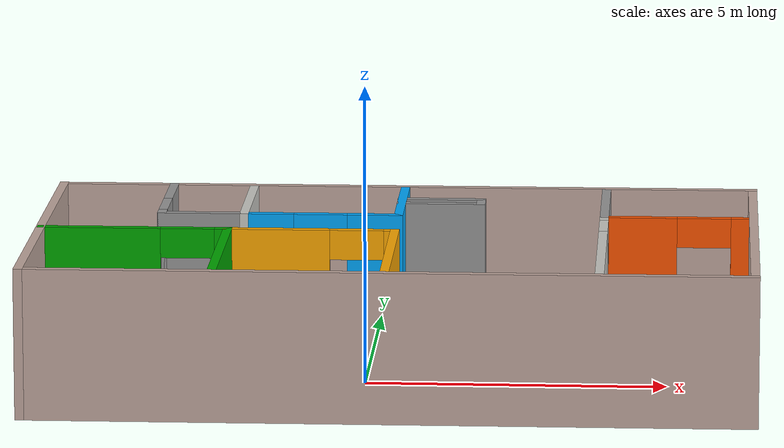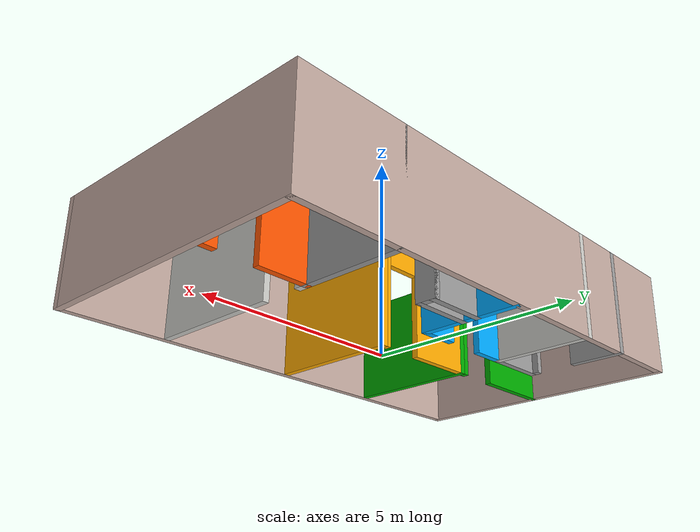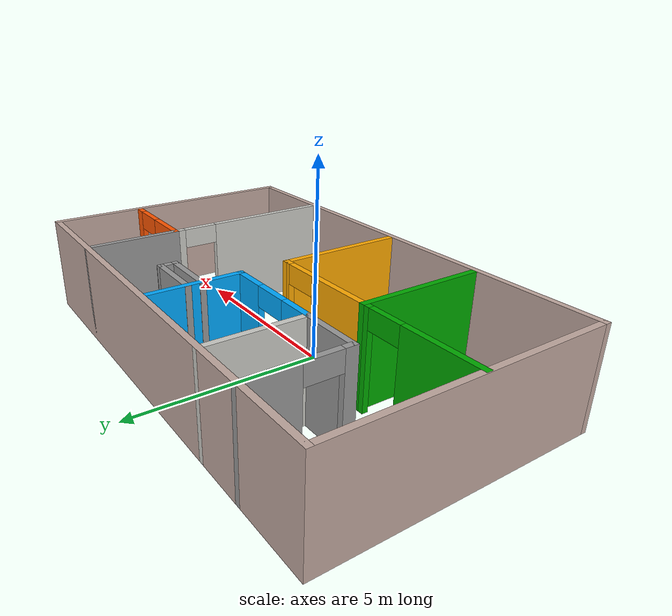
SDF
<?xml version='1.0'?>
<sdf version='1.6'>
  <model name='myBuilding'>
    <pose frame=''>0.488051 0.656083 0 0 -0 0</pose>
    <link name='Wall_10'>
      <collision name='Wall_10_Collision'>
        <geometry>
          <box>
            <size>1.5 0.15 2.5</size>
          </box>
        </geometry>
        <pose frame=''>0 0 1.25 0 -0 0</pose>
      </collision>
      <visual name='Wall_10_Visual'>
        <pose frame=''>0 0 1.25 0 -0 0</pose>
        <geometry>
          <box>
            <size>1.5 0.15 2.5</size>
          </box>
        </geometry>
        <material>
          <script>
            <uri>file://media/materials/scripts/gazebo.material</uri>
            <name>Gazebo/Grey</name>
          </script>
          <ambient>1 1 1 1</ambient>
        </material>
        <meta>
          <layer>0</layer>
        </meta>
      </visual>
      <pose frame=''>-3.33921 1.07498 0 0 -0 0</pose>
    </link>
    <link name='Wall_12'>
      <pose frame=''>-4.35489 -0.175351 0 0 -0 0</pose>
      <visual name='Wall_12_Visual_0'>
        <pose frame=''>-0.595629 0 1.25 0 -0 0</pose>
        <geometry>
          <box>
            <size>2.05874 0.15 2.5</size>
          </box>
        </geometry>
        <material>
          <script>
            <uri>file://media/materials/scripts/gazebo.material</uri>
            <name>Gazebo/Grey</name>
          </script>
          <ambient>0 0.666667 0 1</ambient>
        </material>
        <meta>
          <layer>0</layer>
        </meta>
      </visual>
      <collision name='Wall_12_Collision_0'>
        <geometry>
          <box>
            <size>2.05874 0.15 2.5</size>
          </box>
        </geometry>
        <pose frame=''>-0.595629 0 1.25 0 -0 0</pose>
      </collision>
      <visual name='Wall_12_Visual_1'>
        <pose frame=''>1.47937 0 1.25 0 -0 0</pose>
        <geometry>
          <box>
            <size>0.291258 0.15 2.5</size>
          </box>
        </geometry>
        <material>
          <script>
            <uri>file://media/materials/scripts/gazebo.material</uri>
            <name>Gazebo/Grey</name>
          </script>
          <ambient>0 0.666667 0 1</ambient>
        </material>
        <meta>
          <layer>0</layer>
        </meta>
      </visual>
      <collision name='Wall_12_Collision_1'>
        <geometry>
          <box>
            <size>0.291258 0.15 2.5</size>
          </box>
        </geometry>
        <pose frame=''>1.47937 0 1.25 0 -0 0</pose>
      </collision>
      <visual name='Wall_12_Visual_2'>
        <pose frame=''>0.883742 0 2.25 0 -0 0</pose>
        <geometry>
          <box>
            <size>0.9 0.15 0.5</size>
          </box>
        </geometry>
        <material>
          <script>
            <uri>file://media/materials/scripts/gazebo.material</uri>
            <name>Gazebo/Grey</name>
          </script>
          <ambient>0 0.666667 0 1</ambient>
        </material>
        <meta>
          <layer>0</layer>
        </meta>
      </visual>
      <collision name='Wall_12_Collision_2'>
        <geometry>
          <box>
            <size>0.9 0.15 0.5</size>
          </box>
        </geometry>
        <pose frame=''>0.883742 0 2.25 0 -0 0</pose>
      </collision>
    </link>
    <link name='Wall_13'>
      <collision name='Wall_13_Collision'>
        <geometry>
          <box>
            <size>3.25 0.15 2.5</size>
          </box>
        </geometry>
        <pose frame=''>0 0 1.25 0 -0 0</pose>
      </collision>
      <visual name='Wall_13_Visual'>
        <pose frame=''>0 0 1.25 0 -0 0</pose>
        <geometry>
          <box>
            <size>3.25 0.15 2.5</size>
          </box>
        </geometry>
        <material>
          <script>
            <uri>file://media/materials/scripts/gazebo.material</uri>
            <name>Gazebo/Grey</name>
          </script>
          <ambient>0 0.666667 0 1</ambient>
        </material>
        <meta>
          <layer>0</layer>
        </meta>
      </visual>
      <pose frame=''>-2.80489 -1.72535 0 0 0 -1.5708</pose>
    </link>
    <link name='Wall_20'>
      <collision name='Wall_20_Collision'>
        <geometry>
          <box>
            <size>2.50337 0.15 2.5</size>
          </box>
        </geometry>
        <pose frame=''>0 0 1.25 0 -0 0</pose>
      </collision>
      <visual name='Wall_20_Visual'>
        <pose frame=''>0 0 1.25 0 -0 0</pose>
        <geometry>
          <box>
            <size>2.50337 0.15 2.5</size>
          </box>
        </geometry>
        <material>
          <script>
            <uri>file://media/materials/scripts/gazebo.material</uri>
            <name>Gazebo/CeilingTiled</name>
          </script>
          <ambient>0 0.666667 1 1</ambient>
        </material>
        <meta>
          <layer>0</layer>
        </meta>
      </visual>
      <pose frame=''>-2.62637 2.24833 0 0 0 -1.5708</pose>
    </link>
    <link name='Wall_21'>
      <pose frame=''>-1.32637 1.07169 0 0 -0 0</pose>
      <visual name='Wall_21_Visual_0'>
        <pose frame=''>-0.918866 0 1.25 0 -0 0</pose>
        <geometry>
          <box>
            <size>0.912269 0.15 2.5</size>
          </box>
        </geometry>
        <material>
          <script>
            <uri>file://media/materials/scripts/gazebo.material</uri>
            <name>Gazebo/Grey</name>
          </script>
          <ambient>0 0.666667 1 1</ambient>
        </material>
        <meta>
          <layer>0</layer>
        </meta>
      </visual>
      <collision name='Wall_21_Collision_0'>
        <geometry>
          <box>
            <size>0.912269 0.15 2.5</size>
          </box>
        </geometry>
        <pose frame=''>-0.918866 0 1.25 0 -0 0</pose>
      </collision>
      <visual name='Wall_21_Visual_1'>
        <pose frame=''>0.906134 0 1.25 0 -0 0</pose>
        <geometry>
          <box>
            <size>0.937731 0.15 2.5</size>
          </box>
        </geometry>
        <material>
          <script>
            <uri>file://media/materials/scripts/gazebo.material</uri>
            <name>Gazebo/Grey</name>
          </script>
          <ambient>0 0.666667 1 1</ambient>
        </material>
        <meta>
          <layer>0</layer>
        </meta>
      </visual>
      <collision name='Wall_21_Collision_1'>
        <geometry>
          <box>
            <size>0.937731 0.15 2.5</size>
          </box>
        </geometry>
        <pose frame=''>0.906134 0 1.25 0 -0 0</pose>
      </collision>
      <visual name='Wall_21_Visual_2'>
        <pose frame=''>-0.012731 0 2.25 0 -0 0</pose>
        <geometry>
          <box>
            <size>0.9 0.15 0.5</size>
          </box>
        </geometry>
        <material>
          <script>
            <uri>file://media/materials/scripts/gazebo.material</uri>
            <name>Gazebo/Grey</name>
          </script>
          <ambient>0 0.666667 1 1</ambient>
        </material>
        <meta>
          <layer>0</layer>
        </meta>
      </visual>
      <collision name='Wall_21_Collision_2'>
        <geometry>
          <box>
            <size>0.9 0.15 0.5</size>
          </box>
        </geometry>
        <pose frame=''>-0.012731 0 2.25 0 -0 0</pose>
      </collision>
    </link>
    <link name='Wall_22'>
      <collision name='Wall_22_Collision'>
        <geometry>
          <box>
            <size>2.5 0.15 2.5</size>
          </box>
        </geometry>
        <pose frame=''>0 0 1.25 0 -0 0</pose>
      </collision>
      <visual name='Wall_22_Visual'>
        <pose frame=''>0 0 1.25 0 -0 0</pose>
        <geometry>
          <box>
            <size>2.5 0.15 2.5</size>
          </box>
        </geometry>
        <material>
          <script>
            <uri>file://media/materials/scripts/gazebo.material</uri>
            <name>Gazebo/Grey</name>
          </script>
          <ambient>0 0.666667 1 1</ambient>
        </material>
        <meta>
          <layer>0</layer>
        </meta>
      </visual>
      <pose frame=''>-0.026374 2.24669 0 0 -0 1.5708</pose>
    </link>
    <link name='Wall_24'>
      <pose frame=''>-1.42443 -0.175351 0 0 -0 0</pose>
      <visual name='Wall_24_Visual_0'>
        <pose frame=''>-0.568133 0 1.25 0 -0 0</pose>
        <geometry>
          <box>
            <size>1.77464 0.15 2.5</size>
          </box>
        </geometry>
        <material>
          <script>
            <uri>file://media/materials/scripts/gazebo.material</uri>
            <name>Gazebo/Grey</name>
          </script>
          <ambient>1 0.666667 0 1</ambient>
        </material>
        <meta>
          <layer>0</layer>
        </meta>
      </visual>
      <collision name='Wall_24_Collision_0'>
        <geometry>
          <box>
            <size>1.77464 0.15 2.5</size>
          </box>
        </geometry>
        <pose frame=''>-0.568133 0 1.25 0 -0 0</pose>
      </collision>
      <visual name='Wall_24_Visual_1'>
        <pose frame=''>1.33732 0 1.25 0 -0 0</pose>
        <geometry>
          <box>
            <size>0.236266 0.15 2.5</size>
          </box>
        </geometry>
        <material>
          <script>
            <uri>file://media/materials/scripts/gazebo.material</uri>
            <name>Gazebo/Grey</name>
          </script>
          <ambient>1 0.666667 0 1</ambient>
        </material>
        <meta>
          <layer>0</layer>
        </meta>
      </visual>
      <collision name='Wall_24_Collision_1'>
        <geometry>
          <box>
            <size>0.236266 0.15 2.5</size>
          </box>
        </geometry>
        <pose frame=''>1.33732 0 1.25 0 -0 0</pose>
      </collision>
      <visual name='Wall_24_Visual_2'>
        <pose frame=''>0.769188 0 2.25 0 -0 0</pose>
        <geometry>
          <box>
            <size>0.9 0.15 0.5</size>
          </box>
        </geometry>
        <material>
          <script>
            <uri>file://media/materials/scripts/gazebo.material</uri>
            <name>Gazebo/Grey</name>
          </script>
          <ambient>1 0.666667 0 1</ambient>
        </material>
        <meta>
          <layer>0</layer>
        </meta>
      </visual>
      <collision name='Wall_24_Collision_2'>
        <geometry>
          <box>
            <size>0.9 0.15 0.5</size>
          </box>
        </geometry>
        <pose frame=''>0.769188 0 2.25 0 -0 0</pose>
      </collision>
    </link>
    <link name='Wall_25'>
      <collision name='Wall_25_Collision'>
        <geometry>
          <box>
            <size>3.25 0.15 2.5</size>
          </box>
        </geometry>
        <pose frame=''>0 0 1.25 0 -0 0</pose>
      </collision>
      <visual name='Wall_25_Visual'>
        <pose frame=''>0 0 1.25 0 -0 0</pose>
        <geometry>
          <box>
            <size>3.25 0.15 2.5</size>
          </box>
        </geometry>
        <material>
          <script>
            <uri>file://media/materials/scripts/gazebo.material</uri>
            <name>Gazebo/Grey</name>
          </script>
          <ambient>1 0.666667 0 1</ambient>
        </material>
        <meta>
          <layer>0</layer>
        </meta>
      </visual>
      <pose frame=''>-0.023864 -1.72535 0 0 0 -1.5708</pose>
    </link>
    <link name='Wall_27'>
      <collision name='Wall_27_Collision'>
        <geometry>
          <box>
            <size>2.5 0.15 2.5</size>
          </box>
        </geometry>
        <pose frame=''>0 0 1.25 0 -0 0</pose>
      </collision>
      <visual name='Wall_27_Visual'>
        <pose frame=''>0 0 1.25 0 -0 0</pose>
        <geometry>
          <box>
            <size>2.5 0.15 2.5</size>
          </box>
        </geometry>
        <material>
          <script>
            <uri>file://media/materials/scripts/gazebo.material</uri>
            <name>Gazebo/Grey</name>
          </script>
          <ambient>1 1 1 1</ambient>
        </material>
        <meta>
          <layer>0</layer>
        </meta>
      </visual>
      <pose frame=''>3.42781 2.24998 0 0 0 -1.5708</pose>
    </link>
    <link name='Wall_28'>
      <pose frame=''>4.60281 1.07498 0 0 -0 0</pose>
      <visual name='Wall_28_Visual_0'>
        <pose frame=''>-0.602787 0 1.25 0 -0 0</pose>
        <geometry>
          <box>
            <size>1.29443 0.15 2.5</size>
          </box>
        </geometry>
        <material>
          <script>
            <uri>file://media/materials/scripts/gazebo.material</uri>
            <name>Gazebo/Grey</name>
          </script>
          <ambient>1 0.333333 0 1</ambient>
        </material>
        <meta>
          <layer>0</layer>
        </meta>
      </visual>
      <collision name='Wall_28_Collision_0'>
        <geometry>
          <box>
            <size>1.29443 0.15 2.5</size>
          </box>
        </geometry>
        <pose frame=''>-0.602787 0 1.25 0 -0 0</pose>
      </collision>
      <visual name='Wall_28_Visual_1'>
        <pose frame=''>1.09721 0 1.25 0 -0 0</pose>
        <geometry>
          <box>
            <size>0.305573 0.15 2.5</size>
          </box>
        </geometry>
        <material>
          <script>
            <uri>file://media/materials/scripts/gazebo.material</uri>
            <name>Gazebo/Grey</name>
          </script>
          <ambient>1 0.333333 0 1</ambient>
        </material>
        <meta>
          <layer>0</layer>
        </meta>
      </visual>
      <collision name='Wall_28_Collision_1'>
        <geometry>
          <box>
            <size>0.305573 0.15 2.5</size>
          </box>
        </geometry>
        <pose frame=''>1.09721 0 1.25 0 -0 0</pose>
      </collision>
      <visual name='Wall_28_Visual_2'>
        <pose frame=''>0.494427 0 2.25 0 -0 0</pose>
        <geometry>
          <box>
            <size>0.9 0.15 0.5</size>
          </box>
        </geometry>
        <material>
          <script>
            <uri>file://media/materials/scripts/gazebo.material</uri>
            <name>Gazebo/Grey</name>
          </script>
          <ambient>1 0.333333 0 1</ambient>
        </material>
        <meta>
          <layer>0</layer>
        </meta>
      </visual>
      <collision name='Wall_28_Collision_2'>
        <geometry>
          <box>
            <size>0.9 0.15 0.5</size>
          </box>
        </geometry>
        <pose frame=''>0.494427 0 2.25 0 -0 0</pose>
      </collision>
    </link>
    <link name='Wall_30'>
      <pose frame=''>3.42781 -1.10002 0 0 0 -1.5708</pose>
      <visual name='Wall_30_Visual_0'>
        <pose frame=''>-2.08387 0 1.25 0 -0 0</pose>
        <geometry>
          <box>
            <size>0.332263 0.15 2.5</size>
          </box>
        </geometry>
        <material>
          <script>
            <uri>file://media/materials/scripts/gazebo.material</uri>
            <name>Gazebo/CeilingTiled</name>
          </script>
          <ambient>1 0.333333 0 1</ambient>
        </material>
        <meta>
          <layer>0</layer>
        </meta>
      </visual>
      <collision name='Wall_30_Collision_0'>
        <geometry>
          <box>
            <size>0.332263 0.15 2.5</size>
          </box>
        </geometry>
        <pose frame=''>-2.08387 0 1.25 0 -0 0</pose>
      </collision>
      <visual name='Wall_30_Visual_1'>
        <pose frame=''>0.616131 0 1.25 0 -0 0</pose>
        <geometry>
          <box>
            <size>3.26774 0.15 2.5</size>
          </box>
        </geometry>
        <material>
          <script>
            <uri>file://media/materials/scripts/gazebo.material</uri>
            <name>Gazebo/CeilingTiled</name>
          </script>
          <ambient>1 0.333333 0 1</ambient>
        </material>
        <meta>
          <layer>0</layer>
        </meta>
      </visual>
      <collision name='Wall_30_Collision_1'>
        <geometry>
          <box>
            <size>3.26774 0.15 2.5</size>
          </box>
        </geometry>
        <pose frame=''>0.616131 0 1.25 0 -0 0</pose>
      </collision>
      <visual name='Wall_30_Visual_2'>
        <pose frame=''>-1.46774 0 2.25 0 -0 0</pose>
        <geometry>
          <box>
            <size>0.9 0.15 0.5</size>
          </box>
        </geometry>
        <material>
          <script>
            <uri>file://media/materials/scripts/gazebo.material</uri>
            <name>Gazebo/CeilingTiled</name>
          </script>
          <ambient>1 0.333333 0 1</ambient>
        </material>
        <meta>
          <layer>0</layer>
        </meta>
      </visual>
      <collision name='Wall_30_Collision_2'>
        <geometry>
          <box>
            <size>0.9 0.15 0.5</size>
          </box>
        </geometry>
        <pose frame=''>-1.46774 0 2.25 0 -0 0</pose>
      </collision>
    </link>
    <link name='Wall_32'>
      <collision name='Wall_32_Collision'>
        <geometry>
          <box>
            <size>1.5 0.15 2.5</size>
          </box>
        </geometry>
        <pose frame=''>0 0 1.25 0 -0 0</pose>
      </collision>
      <visual name='Wall_32_Visual'>
        <pose frame=''>0 0 1.25 0 -0 0</pose>
        <geometry>
          <box>
            <size>1.5 0.15 2.5</size>
          </box>
        </geometry>
        <material>
          <script>
            <uri>file://media/materials/scripts/gazebo.material</uri>
            <name>Gazebo/Grey</name>
          </script>
          <ambient>1 1 1 1</ambient>
        </material>
        <meta>
          <layer>0</layer>
        </meta>
      </visual>
      <pose frame=''>0.643276 2.39919 0 0 -0 0</pose>
    </link>
    <link name='Wall_33'>
      <collision name='Wall_33_Collision'>
        <geometry>
          <box>
            <size>0.5 0.15 2.5</size>
          </box>
        </geometry>
        <pose frame=''>0 0 1.25 0 -0 0</pose>
      </collision>
      <visual name='Wall_33_Visual'>
        <pose frame=''>0 0 1.25 0 -0 0</pose>
        <geometry>
          <box>
            <size>0.5 0.15 2.5</size>
          </box>
        </geometry>
        <material>
          <script>
            <uri>file://media/materials/scripts/gazebo.material</uri>
            <name>Gazebo/Grey</name>
          </script>
          <ambient>1 1 1 1</ambient>
        </material>
        <meta>
          <layer>0</layer>
        </meta>
      </visual>
      <pose frame=''>1.31828 2.22419 0 0 0 -1.5708</pose>
    </link>
    <link name='Wall_34'>
      <collision name='Wall_34_Collision'>
        <geometry>
          <box>
            <size>1.5 0.15 2.5</size>
          </box>
        </geometry>
        <pose frame=''>0 0 1.25 0 -0 0</pose>
      </collision>
      <visual name='Wall_34_Visual'>
        <pose frame=''>0 0 1.25 0 -0 0</pose>
        <geometry>
          <box>
            <size>1.5 0.15 2.5</size>
          </box>
        </geometry>
        <material>
          <script>
            <uri>file://media/materials/scripts/gazebo.material</uri>
            <name>Gazebo/Grey</name>
          </script>
          <ambient>1 1 1 1</ambient>
        </material>
        <meta>
          <layer>0</layer>
        </meta>
      </visual>
      <pose frame=''>0.643276 2.04919 0 0 -0 3.14159</pose>
    </link>
    <link name='Wall_4'>
      <collision name='Wall_4_Collision'>
        <geometry>
          <box>
            <size>12 0.15 2.5</size>
          </box>
        </geometry>
        <pose frame=''>0 0 1.25 0 -0 0</pose>
      </collision>
      <visual name='Wall_4_Visual'>
        <pose frame=''>0 0 1.25 0 -0 0</pose>
        <geometry>
          <box>
            <size>12 0.15 2.5</size>
          </box>
        </geometry>
        <material>
          <script>
            <uri>file://media/materials/scripts/gazebo.material</uri>
            <name>Gazebo/Grey</name>
          </script>
          <ambient>0.760784 0.662745 0.627451 1</ambient>
        </material>
        <meta>
          <layer>0</layer>
        </meta>
      </visual>
      <pose frame=''>0 3.42498 0 0 -0 0</pose>
    </link>
    <link name='Wall_5'>
      <collision name='Wall_5_Collision'>
        <geometry>
          <box>
            <size>7 0.15 2.5</size>
          </box>
        </geometry>
        <pose frame=''>0 0 1.25 0 -0 0</pose>
      </collision>
      <visual name='Wall_5_Visual'>
        <pose frame=''>0 0 1.25 0 -0 0</pose>
        <geometry>
          <box>
            <size>7 0.15 2.5</size>
          </box>
        </geometry>
        <material>
          <script>
            <uri>file://media/materials/scripts/gazebo.material</uri>
            <name>Gazebo/Grey</name>
          </script>
          <ambient>0.760784 0.662745 0.627451 1</ambient>
        </material>
        <meta>
          <layer>0</layer>
        </meta>
      </visual>
      <pose frame=''>5.925 -2.1e-05 0 0 0 -1.5708</pose>
    </link>
    <link name='Wall_6'>
      <collision name='Wall_6_Collision'>
        <geometry>
          <box>
            <size>12 0.15 2.5</size>
          </box>
        </geometry>
        <pose frame=''>0 0 1.25 0 -0 0</pose>
      </collision>
      <visual name='Wall_6_Visual'>
        <pose frame=''>0 0 1.25 0 -0 0</pose>
        <geometry>
          <box>
            <size>12 0.15 2.5</size>
          </box>
        </geometry>
        <material>
          <script>
            <uri>file://media/materials/scripts/gazebo.material</uri>
            <name>Gazebo/Grey</name>
          </script>
          <ambient>0.760784 0.662745 0.627451 1</ambient>
        </material>
        <meta>
          <layer>0</layer>
        </meta>
      </visual>
      <pose frame=''>0 -3.42502 0 0 -0 3.14159</pose>
    </link>
    <link name='Wall_7'>
      <collision name='Wall_7_Collision'>
        <geometry>
          <box>
            <size>7 0.15 2.5</size>
          </box>
        </geometry>
        <pose frame=''>0 0 1.25 0 -0 0</pose>
      </collision>
      <visual name='Wall_7_Visual'>
        <pose frame=''>0 0 1.25 0 -0 0</pose>
        <geometry>
          <box>
            <size>7 0.15 2.5</size>
          </box>
        </geometry>
        <material>
          <script>
            <uri>file://media/materials/scripts/gazebo.material</uri>
            <name>Gazebo/Grey</name>
          </script>
          <ambient>0.760784 0.662745 0.627451 1</ambient>
        </material>
        <meta>
          <layer>0</layer>
        </meta>
      </visual>
      <pose frame=''>-5.925 -2.1e-05 0 0 -0 1.5708</pose>
    </link>
    <link name='Wall_9'>
      <pose frame=''>-4.01421 2.24998 0 0 0 -1.5708</pose>
      <visual name='Wall_9_Visual_0'>
        <pose frame=''>-0.602787 0 1.25 0 -0 0</pose>
        <geometry>
          <box>
            <size>1.29443 0.15 2.5</size>
          </box>
        </geometry>
        <material>
          <script>
            <uri>file://media/materials/scripts/gazebo.material</uri>
            <name>Gazebo/Grey</name>
          </script>
          <ambient>1 1 1 1</ambient>
        </material>
        <meta>
          <layer>0</layer>
        </meta>
      </visual>
      <collision name='Wall_9_Collision_0'>
        <geometry>
          <box>
            <size>1.29443 0.15 2.5</size>
          </box>
        </geometry>
        <pose frame=''>-0.602787 0 1.25 0 -0 0</pose>
      </collision>
      <visual name='Wall_9_Visual_1'>
        <pose frame=''>1.09721 0 1.25 0 -0 0</pose>
        <geometry>
          <box>
            <size>0.305574 0.15 2.5</size>
          </box>
        </geometry>
        <material>
          <script>
            <uri>file://media/materials/scripts/gazebo.material</uri>
            <name>Gazebo/Grey</name>
          </script>
          <ambient>1 1 1 1</ambient>
        </material>
        <meta>
          <layer>0</layer>
        </meta>
      </visual>
      <collision name='Wall_9_Collision_1'>
        <geometry>
          <box>
            <size>0.305574 0.15 2.5</size>
          </box>
        </geometry>
        <pose frame=''>1.09721 0 1.25 0 -0 0</pose>
      </collision>
      <visual name='Wall_9_Visual_2'>
        <pose frame=''>0.494426 0 2.25 0 -0 0</pose>
        <geometry>
          <box>
            <size>0.9 0.15 0.5</size>
          </box>
        </geometry>
        <material>
          <script>
            <uri>file://media/materials/scripts/gazebo.material</uri>
            <name>Gazebo/Grey</name>
          </script>
          <ambient>1 1 1 1</ambient>
        </material>
        <meta>
          <layer>0</layer>
        </meta>
      </visual>
      <collision name='Wall_9_Collision_2'>
        <geometry>
          <box>
            <size>0.9 0.15 0.5</size>
          </box>
        </geometry>
        <pose frame=''>0.494426 0 2.25 0 -0 0</pose>
      </collision>
    </link>
    <static>1</static>
  </model>
</sdf>
